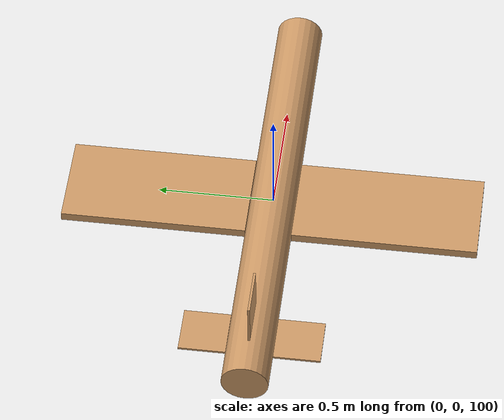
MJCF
<mujoco model="fixed_wing_drone">
  <compiler angle="degree" inertiafromgeom="true"/>
  <default>
    <joint armature="0.01" damping=".1" limited="true"/>
    <geom conaffinity="0" condim="3" contype="1" density="1000" friction=".7 .1 .1" rgba="0.8 0.6 .4 1"/>
  </default>
    <option integrator="RK4" timestep="0.002" density="1.225" viscosity="0.00002"/>
    <worldbody>
        <light cutoff="100" diffuse="1 1 1" dir="-0 0 -1.3" directional="true" exponent="1" pos="0 0 1.3" specular=".1 .1 .1"/>
        <geom conaffinity="1" condim="3" name="floor" pos="0 0 0" rgba="0.8 0.9 0.8 1" size="400 400 400" type="plane" material="MatPlane"/>
        <!-- Fuselage -->
        <body name="fuselage" pos="0 0 100" euler="0 -90 0">
            <camera name="track" mode="trackcom" pos="0 -5 -1.25" xyaxes="1 0 0 0 0 1"/>
            <joint armature="0" axis="1 0 0" damping="0" limited="false" name="rootx" pos="0 0 0" stiffness="0" type="slide"/>
            <joint armature="0" axis="0 1 0" damping="0" limited="false" name="rooty" pos="0 0 0" stiffness="0" type="slide"/>
            <joint armature="0" axis="0 0 1" damping="0" limited="false" name="rootz" pos="0 0 0" stiffness="0" type="slide"/>
            <joint armature="0" axis="1 0 0" damping="0" limited="false" name="rootx_hinge" pos="0 0 0" stiffness="0" type="hinge"/>
            <joint armature="0" axis="0 1 0" damping="0" limited="false" name="rooty_hinge" pos="0 0 0" stiffness="0" type="hinge"/>
            <joint armature="0" axis="0 0 1" damping="0" limited="false" name="rootz_hinge" pos="0 0 0" stiffness="0" type="hinge"/>
            <geom name="fuselage_geom" type="cylinder" size="0.1 1.0" density="1000"/>

            <!-- Wings -->
            <body name="left_wing" pos="0 -0.5 0">
                <joint axis="0 1 0" name="left_wing_y_joint" pos="0 0.5 0" stiffness="0" type="hinge" range="-45 45"/>
                <geom name="left_wing_geom" type="box" size="0.02 0.4 0.2" density="1000"/>
                <site name="left_wing_aero_center" pos="0 0.25 0" size="0.01" type="sphere" rgba="1 0 0 1"/>
                <site name="left_engine_site" pos="0 0.25 0" size="0.01" type="sphere" rgba="0 0 1 1"/>
            </body>
            <body name="right_wing" pos="0 0.5 0">
                <joint axis="0 1 0" name="right_wing_y_joint" pos="0 -0.5 0" stiffness="0" type="hinge" range="-45 45"/>
                <geom name="right_wing_geom" type="box" size="0.02 0.4 0.2" density="1000"/>
                <site name="right_wing_aero_center" pos="0 -0.25 0" size="0.01" type="sphere" rgba="1 0 0 1"/>
                <site name="right_engine_site" pos="0 -0.25 0" size="0.01" type="sphere" rgba="0 0 1 1"/>
            </body>

            <!-- Horizontal Tailplane -->
            <body name="left_tailplane" pos="0 -0.2 0.75">
                <geom name="left_tailplane_geom" type="box" size="0.005 0.1 0.1" density="1000"/>
            </body>
            <body name="right_tailplane" pos="0 0.2 0.75">
                <geom name="right_tailplane_geom" type="box" size="0.005 0.1 0.1" density="1000"/>
            </body>
            <body name="vertical_tailplane" pos="0.2 0 0.75">
                <geom name="vertical_tailplane_geom" type="box" size="0.1 0.005 0.1" density="1000"/>
            </body>
        </body>
    </worldbody>

    <actuator>
        <!-- Point lift forces -->
        <general name="left_wing_lift" site="left_wing_aero_center" />
        <general name="right_wing_lift" site="right_wing_aero_center" />
    </actuator>
    <actuator>
        <!-- Thrust for engines -->
        <general name="left_engine_thrust" site="left_engine_site" />
        <general name="right_engine_thrust" site="right_engine_site" />
    </actuator>

    <actuator>
    <motor ctrllimited="true" ctrlrange="-1.0 1.0" gear="1" joint="left_wing_y_joint"/>
    <motor ctrllimited="true" ctrlrange="-1.0 1.0" gear="1" joint="right_wing_y_joint"/>
    </actuator>

    <asset>
        <texture type="skybox" builtin="gradient" rgb1=".4 .5 .6" rgb2="0 0 0"
            width="100" height="100"/>
        <texture builtin="flat" height="1278" mark="cross" markrgb="1 1 1" name="texgeom" random="0.01" rgb1="0.8 0.6 0.4" rgb2="0.8 0.6 0.4" type="cube" width="127"/>
        <texture builtin="checker" height="100" name="texplane" rgb1="0 0 0" rgb2="0.8 0.8 0.8" type="2d" width="100"/>
        <material name="MatPlane" reflectance="0.5" shininess="1" specular="1" texrepeat="60 60" texture="texplane"/>
        <material name="geom" texture="texgeom" texuniform="true"/>
    </asset>
</mujoco>
